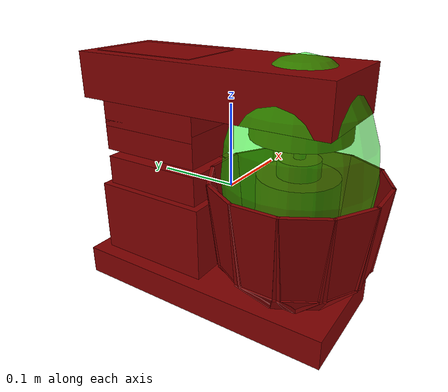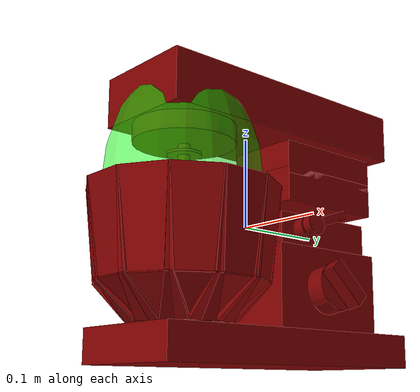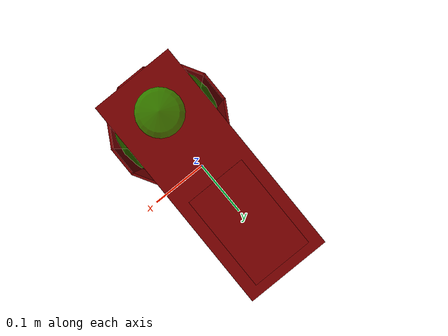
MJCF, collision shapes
<?xml version='1.0' encoding='UTF-8'?>
<mujoco model="model">
  <option timestep="0.002" gravity="0.0 0.0 -9.81"/>
  <compiler angle="radian"/>
  <asset>
    <mesh file="visuals/blender.obj" name="blender_vis"/>
    <mesh file="visuals/bowl.obj" name="bowl_vis"/>
    <mesh file="visuals/button_head_lock.obj" name="button_head_lock_vis"/>
    <mesh file="visuals/head.obj" name="head_vis"/>
    <mesh file="visuals/knob_speed.obj" name="knob_speed_vis"/>
    <mesh file="visuals/Body001.obj" name="Body001_vis"/>
    <texture file="visuals/T_BC001.png" name="Body001_material" type="2d"/>
    <material name="Body001_material" rgba="1 1 1 1.0" texture="Body001_material" shininess="0.4472135901451111" specular="1"/>
    <texture file="visuals/T_BC001.png" name="bowl_material" type="2d"/>
    <material name="bowl_material" rgba="1 1 1 1.0" texture="bowl_material" shininess="0.4472135901451111" specular="2"/>
    <texture file="visuals/T_BC001.png" name="button_head_lock_material" type="2d"/>
    <material name="button_head_lock_material" rgba="1 1 1 1.0" texture="button_head_lock_material" shininess="0.4472135901451111" specular="0.3103448502657381"/>
    <texture file="visuals/T_BC001.png" name="head_material" type="2d"/>
    <material name="head_material" rgba="1 1 1 1.0" texture="head_material" shininess="0.4472135901451111" specular="1"/>
    <texture file="visuals/T_BC001.png" name="blender_material" type="2d"/>
    <material name="blender_material" rgba="1 1 1 1.0" texture="blender_material" shininess="0.4472135901451111" specular="2"/>
    <texture file="visuals/T_BC001.png" name="knob_speed_material" type="2d"/>
    <material name="knob_speed_material" rgba="1 1 1 1.0" texture="knob_speed_material" shininess="0.4472135901451111" specular="0.3103448502657381"/>
  </asset>
  <default>
    <default class="visual">
      <geom conaffinity="0" contype="0" group="1" type="mesh"/>
    </default>
    <default class="collision">
      <geom group="0" rgba="0.5 0 0 0.5"/>
    </default>
    <default class="spawn">
      <geom group="0" rgba="1 1 1 0.5" contype="0" conaffinity="0"/>
      <site group="0" rgba="1 1 1 0.5"/>
    </default>
    <default class="region">
      <geom group="1" conaffinity="0" contype="0" rgba="0 1 0 0"/>
    </default>
  </default>
  <worldbody>
    <body>
      <body name="object">
        <geom mesh="Body001_vis" type="mesh" solimp="0.998 0.998 0.001" solref="0.001 1" friction="0.95 0.3 0.1" class="visual" material="Body001_material"/>
        <geom type="box" pos="5.073845386505127e-06 0.013375680893659592 -0.13134357333183289" size="0.07056957483291626 0.16979755461215973 0.01855016127228737" quat="1.0 0.0 0.0 0.0" class="collision"/>
        <geom type="box" pos="-0.005887225735932589 0.09084387868642807 -0.06559009104967117" size="0.04578365013003349 0.07607658207416534 0.04703680798411369" quat="1.0 0.0 0.0 0.0" class="collision"/>
        <geom type="box" pos="-0.005887224804610014 0.09195831418037415 -0.00040517188608646393" size="0.037225399166345596 0.06769412755966187 0.019153527915477753" quat="1.0 0.0 0.0 0.0" class="collision"/>
        <body name="bowl">
          <geom mesh="bowl_vis" type="mesh" solimp="0.998 0.998 0.001" solref="0.001 1" friction="0.95 0.3 0.1" class="visual" material="bowl_material"/>
          <geom type="cylinder" pos="5.066394805908203e-06 -0.08725181967020035 -0.10524020344018936" size="0.0464482381939888 0.004687561187893152" quat="7.549790126404332e-08 0.0 0.0 1.0" class="collision"/>
          <geom type="box" pos="5.073733063909458e-06 -0.15343552827835083 -0.0882730558514595" size="0.027358751744031906 0.0020164165180176497 0.027878670021891594" quat="6.998173773808958e-08 -2.8328244638942124e-08 -0.9269362092018127 -0.3752189874649048" class="collision"/>
          <geom type="box" pos="5.073733063909458e-06 -0.17774909734725952 -0.018456988036632538" size="0.027358751744031906 0.002016416285187006 0.04990223050117493" quat="7.536473134450716e-08 -4.482207494049817e-09 -0.9982361197471619 -0.05936863273382187" class="collision"/>
          <geom type="box" pos="-0.03308677673339844 -0.14456859230995178 -0.0882730558514595" size="0.027358751744031906 0.002016416285187006 0.027878668159246445" quat="0.09711387753486633 0.23990875482559204 0.8953516483306885 0.36243361234664917" class="collision"/>
          <geom type="box" pos="-0.04524356871843338 -0.16562476754188538 -0.018456988036632538" size="0.027358751744031906 0.002016416285187006 0.04990223050117493" quat="-0.015365572646260262 -0.2583625316619873 -0.9642220735549927 -0.05734538659453392" class="collision"/>
          <geom type="box" pos="-0.05731169134378433 -0.12034367024898529 -0.0882730558514595" size="0.027358751744031906 0.002016416285187006 0.027878666296601295" quat="0.18760931491851807 0.46346813440322876 0.8027503490447998 0.3249490261077881" class="collision"/>
          <geom type="box" pos="-0.07836788147687912 -0.13250046968460083 -0.018456995487213135" size="0.027358751744031906 0.002016416285187006 0.04990223050117493" quat="-0.02968408912420273 -0.4991180896759033 -0.8644978404045105 -0.05141449719667435" class="collision"/>
          <geom type="box" pos="-0.06617863476276398 -0.08725183457136154 -0.0882730558514595" size="0.027358751744031906 0.002016416285187006 0.027878666296601295" quat="0.2653197944164276 0.6554428935050964 0.6554428935050964 0.2653198540210724" class="collision"/>
          <geom type="box" pos="-0.09049221873283386 -0.08725183457136154 -0.018456988036632538" size="0.027358751744031906 0.0020164165180176497 0.04990223050117493" quat="0.041979771107435226 0.7058594822883606 0.7058596014976501 0.04197971895337105" class="collision"/>
          <geom type="box" pos="-0.057311706244945526 -0.0541599877178669 -0.0882730558514595" size="0.027358751744031906 0.002016416285187006 0.027878666296601295" quat="0.32494908571243286 0.8027502298355103 0.4634682834148407 0.1876094490289688" class="collision"/>
          <geom type="box" pos="-0.07836788892745972 -0.04200320318341255 -0.018456988036632538" size="0.027358751744031906 0.002016416285187006 0.04990223050117493" quat="0.05141449719667435 0.8644978404045105 0.4991181492805481 0.02968413010239601" class="collision"/>
          <geom type="box" pos="-0.03308679163455963 -0.029935061931610107 -0.0882730558514595" size="0.027358751744031906 0.0020164165180176497 0.027878668159246445" quat="0.3624334931373596 0.8953517079353333 0.23990881443023682 0.09711382538080215" class="collision"/>
          <geom type="box" pos="-0.04524358734488487 -0.00887887179851532 -0.018456995487213135" size="0.027358751744031906 0.002016416285187006 0.04990223050117493" quat="0.05734540894627571 0.9642220735549927 0.2583625614643097 0.01536561455577612" class="collision"/>
          <geom type="box" pos="5.049063020123867e-06 -0.021068118512630463 -0.0882730558514595" size="0.027358751744031906 0.002016416285187006 0.027878666296601295" quat="0.37521877884864807 0.9269362688064575 5.358042187708634e-08 6.884591385869498e-08" class="collision"/>
          <geom type="box" pos="5.045391844760161e-06 0.0032454654574394226 -0.018456988036632538" size="0.027358751744031906 0.002016416285187006 0.04990223050117493" quat="0.05936868488788605 0.9982361197471619 7.276963742697262e-08 4.8116497453065676e-08" class="collision"/>
          <geom type="box" pos="0.033096909523010254 -0.029935050755739212 -0.0882730558514595" size="0.027358751744031906 0.002016416285187006 0.027878668159246445" quat="0.3624334931373596 0.8953517079353333 -0.23990881443023682 -0.09711382538080215" class="collision"/>
          <geom type="box" pos="0.0452537015080452 -0.008878879249095917 -0.018456988036632538" size="0.027358751744031906 0.002016416285187006 0.04990223050117493" quat="0.05734540894627571 0.9642220735549927 -0.2583625614643097 -0.015365615487098694" class="collision"/>
          <geom type="box" pos="0.057321831583976746 -0.054159972816705704 -0.0882730558514595" size="0.027358751744031906 0.002016416285187006 0.027878668159246445" quat="0.3249489367008209 0.8027502298355103 -0.46346840262413025 -0.18760946393013" class="collision"/>
          <geom type="box" pos="0.07837801426649094 -0.04200318083167076 -0.018456995487213135" size="0.027358751744031906 0.002016416285187006 0.04990223050117493" quat="0.05141449719667435 0.8644978404045105 -0.4991181492805481 -0.02968413010239601" class="collision"/>
          <geom type="box" pos="0.0661887675523758 -0.08725181221961975 -0.0882730558514595" size="0.027358751744031906 0.002016416285187006 0.027878666296601295" quat="0.2653197944164276 0.6554428935050964 -0.6554428935050964 -0.2653198540210724" class="collision"/>
          <geom type="box" pos="0.09050235152244568 -0.08725181221961975 -0.018456988036632538" size="0.027358751744031906 0.0020164165180176497 0.04990223050117493" quat="0.041979771107435226 0.7058594822883606 -0.7058596014976501 -0.04197971895337105" class="collision"/>
          <geom type="box" pos="0.057321835309267044 -0.1203436553478241 -0.0882730558514595" size="0.027358751744031906 0.002016416285187006 0.027878666296601295" quat="0.18760941922664642 0.4634682238101959 -0.802750289440155 -0.32494911551475525" class="collision"/>
          <geom type="box" pos="0.07837801426649094 -0.13250043988227844 -0.018456995487213135" size="0.027358751744031906 0.002016416285187006 0.04990223050117493" quat="-0.02968408353626728 -0.4991181492805481 0.8644978404045105 0.05141448602080345" class="collision"/>
          <geom type="box" pos="0.033096905797719955 -0.14456859230995178 -0.0882730558514595" size="0.027358755469322205 0.0020164165180176497 0.027878668159246445" quat="0.09711378812789917 0.2399086058139801 -0.8953517079353333 -0.3624335527420044" class="collision"/>
          <geom type="box" pos="0.0452536940574646 -0.16562476754188538 -0.018456995487213135" size="0.027358753606677055 0.002016416285187006 0.04990223050117493" quat="0.01536570955067873 0.258362352848053 -0.9642221331596375 -0.05734535679221153" class="collision"/>
          <geom name="reg_bowl" type="ellipsoid" pos="-0.00032674369867891073 -0.08714649826288223 0.03208763897418976" size="0.08353977650403976 0.0851316973567009 0.131158709526062" rgba="0 1 0 0.5" class="region"/>
        </body>
        <body name="button_head_lock">
          <joint axis="-0.9848235845565796 0.0 -0.17355889081954956" pos="0.06283474713563919 0.04864196851849556 0.0029252218082547188" limited="true" name="button_head_lock_joint" range="0.0 0.9599310885968813" type="hinge" damping="1" frictionloss="1" armature=".01" stiffness="0.05"/>
          <geom mesh="button_head_lock_vis" type="mesh" solimp="0.998 0.998 0.001" solref="0.001 1" friction="0.95 0.3 0.1" class="visual" material="button_head_lock_material"/>
          <geom type="cylinder" pos="0.04379193112254143 0.04874860495328903 -0.0006280594971030951" size="0.012832711450755596 0.0065756323747336864" quat="0.7654592394828796 -5.1422556879288095e-08 0.6434844136238098 4.322845725823754e-08" class="collision"/>
          <geom type="cylinder" pos="0.0562073178589344 0.048545051366090775 0.0018812189809978008" size="0.011901753023266792 0.0049078515730798244" quat="0.5284447073936462 -0.4458100497722626 -0.6163422465324402 0.37699049711227417" class="collision"/>
          <geom class="collision" type="box" pos="0.05370982363820076 0.07828723639249802 0.012396917678415775" size="0.004682561848312616 0.022244270890951157 0.004682561848312616" quat="0.9826816916465759 0.16859455406665802 -0.07516278326511383 0.016221465542912483" name="button_head_lock_main"/>
        </body>
        <body name="head">
          <joint axis="-1.0 0.0 0.0" pos="5.645250894303899e-06 0.15499162673950195 0.02600679360330105" limited="true" name="head_joint" range="0.0 1.5707963267948966" type="hinge" damping="1" frictionloss="1" armature=".01" stiffness="0.05"/>
          <geom mesh="head_vis" type="mesh" solimp="0.998 0.998 0.001" solref="0.001 1" friction="0.95 0.3 0.1" class="visual" material="head_material"/>
          <geom type="box" pos="5.073845386505127e-06 0.09217700362205505 0.10592108964920044" size="0.04311765730381012 0.06769410520792007 0.046253502368927" quat="1.0 0.0 0.0 0.0" class="collision"/>
          <geom type="box" pos="5.073845386505127e-06 0.014708846807479858 0.12418593466281891" size="0.05965360626578331 0.15832160413265228 0.027248049154877663" quat="1.0 0.0 0.0 0.0" class="collision"/>
          <geom type="box" pos="5.073845386505127e-06 0.09217700362205505 0.0479249432682991" size="0.04311765730381012 0.06769412755966187 0.01956850104033947" quat="1.0 0.0 0.0 0.0" class="collision"/>
          <geom type="cylinder" pos="5.073845386505127e-06 -0.08695147931575775 0.08893030136823654" size="0.054843828082084656 0.011555799283087254" quat="1.0 0.0 0.0 0.0" class="collision"/>
          <body name="blender">
            <joint axis="0.0 0.0 1.0" pos="6.427988409996033e-06 -0.08725085854530334 0.009146001189947128" limited="false" name="blender_joint" range="0 360" type="hinge" damping="1" frictionloss="1" armature=".01" stiffness="0.05"/>
            <geom mesh="blender_vis" type="mesh" solimp="0.998 0.998 0.001" solref="0.001 1" friction="0.95 0.3 0.1" class="visual" material="blender_material"/>
            <geom type="cylinder" pos="6.427988409996033e-06 -0.08725085854530334 0.009146001189947128" size="0.04660256952047348 0.024174952879548073" quat="1.0 0.0 0.0 0.0" class="collision"/>
            <geom type="cylinder" pos="6.427988409996033e-06 -0.08725085854530334 -0.035879235714673996" size="0.03096526861190796 0.021607886999845505" quat="1.0 0.0 0.0 0.0" class="collision"/>
            <geom type="cylinder" pos="6.427988409996033e-06 -0.08725085854530334 0.04285428673028946" size="0.024344278499484062 0.009810916148126125" quat="1.0 0.0 0.0 0.0" class="collision"/>
            <geom type="cylinder" pos="6.427988409996033e-06 -0.08725085854530334 0.06494736671447754" size="0.006610231939703226 0.011693627573549747" quat="1.0 0.0 0.0 0.0" class="collision"/>
            <geom type="cylinder" pos="6.427988409996033e-06 -0.08725085854530334 0.06630212068557739" size="0.018412040546536446 0.0013846845831722021" quat="1.0 0.0 0.0 0.0" class="collision"/>
          </body>
        </body>
        <body name="knob_speed">
          <joint axis="-0.9862949848175049 0.0 -0.16499117016792297" pos="0.05769357457756996 0.07274851202964783 -0.06667506694793701" limited="true" name="knob_speed_joint" range="0.0 3.141592653589793" type="hinge" damping="0.05" armature="0.001"/>
          <geom mesh="knob_speed_vis" type="mesh" solimp="0.998 0.998 0.001" solref="0.001 1" friction="0.95 0.3 0.1" class="visual" material="knob_speed_material"/>
          <geom type="cylinder" pos="0.05795777589082718 0.07274851202964783 -0.06654687225818634" size="0.026588069275021553 0.010307710617780685" quat="0.7660444378852844 -4.318225421684474e-08 0.6427876353263855 3.490197286737384e-08" class="collision"/>
          <geom class="collision" type="box" pos="0.07732999324798584 0.07274755835533142 -0.06316711008548737" size="0.00778769887983799 0.009430400095880032 0.02553301304578781" quat="0.9379123449325562 0.33283326029777527 -0.09194265305995941 0.03300035372376442" name="knob_speed_main"/>
        </body>
        <geom class="region" name="reg_main" type="box" pos="5.62518835067749e-06 0.01275847852230072 0.0" size="0.07100000774860382 0.17087170279026032 0.15059827065467835"/>
      </body>
    </body>
  </worldbody>
  <actuator>
    <motor name="button_head_lock_joint_actuator" joint="button_head_lock_joint" gear="0.5"/>
    <motor name="head_joint_actuator" joint="head_joint" gear="0.5"/>
    <motor name="knob_speed_joint_actuator" joint="knob_speed_joint" gear="0.5"/>
    <motor name="blender_joint_actuator" joint="blender_joint" gear="10"/>
  </actuator>
</mujoco>
